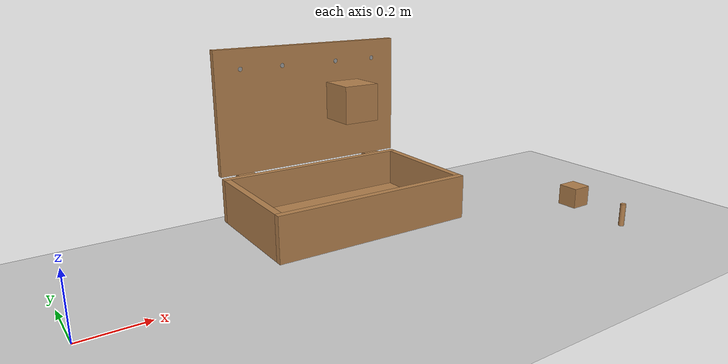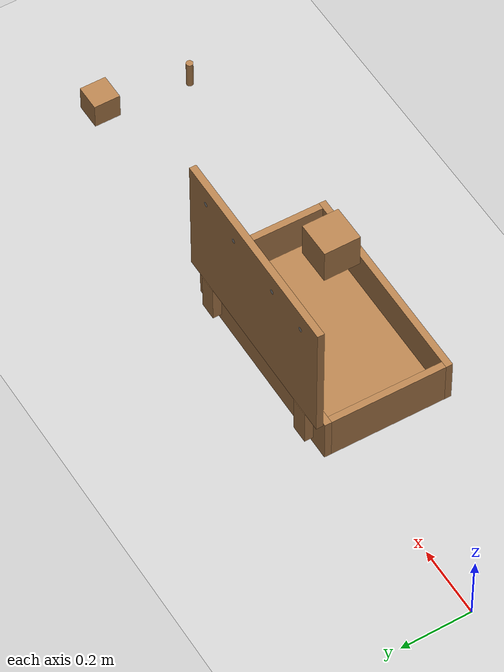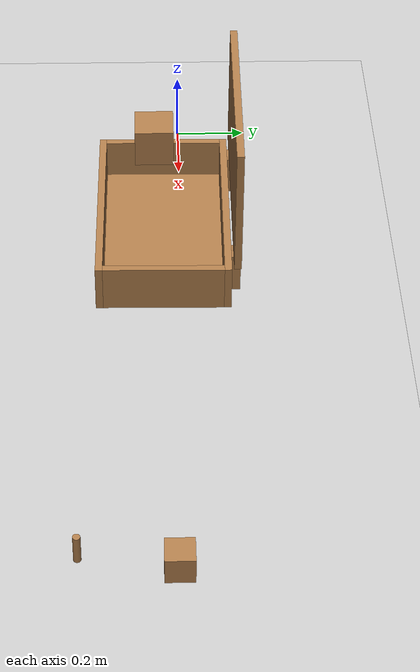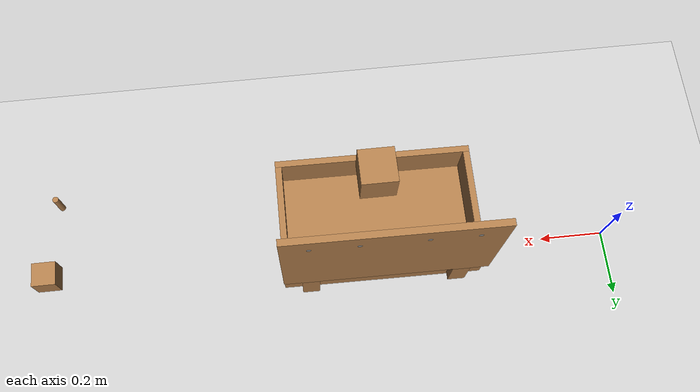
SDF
<sdf version="1.6">
 <world name="default">
  <light name="sun" type="directional">
   <pose>0 0 10 0 -0 0</pose>
   <diffuse>0.8 0.8 0.8 1</diffuse>
   <specular>0.2 0.2 0.2 1</specular>
   <attenuation>
    <range>1000</range>
    <constant>0.9</constant>
    <linear>0.01</linear>
    <quadratic>0.001</quadratic>
   </attenuation>
   <direction>-0.5 0.1 -0.9</direction>
  </light>
  <model name="ground_plane">
   <static>1</static>
   <link name="link">
    <collision name="collision">
     <geometry><plane><normal>0 0 1</normal><size>100 100</size></plane></geometry>
     <surface><friction><ode><mu>100</mu><mu2>50</mu2></ode></friction></surface>
    </collision>
    <visual name="visual">
     <cast_shadows>0</cast_shadows>
     <geometry><plane><normal>0 0 1</normal><size>100 100</size></plane></geometry>
     <material>
      <script><uri>file://media/materials/scripts/gazebo.material</uri><name>Gazebo/Grey</name></script>
     </material>
    </visual>
   </link>
  </model>
  <gravity>0 0 -9.8</gravity>
  <magnetic_field>6e-06 2.3e-05 -4.2e-05</magnetic_field>
  <atmosphere type="adiabatic"/>
  <physics name="default_physics" default="0" type="ode">
   <max_step_size>0.001</max_step_size>
   <real_time_factor>1</real_time_factor>
   <real_time_update_rate>1000</real_time_update_rate>
  </physics>
  <scene><ambient>0.4 0.4 0.4 1</ambient><background>0.7 0.7 0.7 1</background><shadows>1</shadows></scene>
  <spherical_coordinates>
   <surface_model>EARTH_WGS84</surface_model>
   <latitude_deg>0</latitude_deg>
   <longitude_deg>0</longitude_deg>
   <elevation>0</elevation>
   <heading_deg>0</heading_deg>
  </spherical_coordinates>
  <light name="user_point_light_0" type="point">
   <pose>1.00399 0.018046 1 0 -0 0</pose>
   <diffuse>0.5 0.5 0.5 1</diffuse>
   <specular>0.1 0.1 0.1 1</specular>
   <attenuation>
    <range>20</range>
    <constant>0.5</constant>
    <linear>0.01</linear>
    <quadratic>0.001</quadratic>
   </attenuation>
   <cast_shadows>0</cast_shadows>
   <direction>0 0 -1</direction>
  </light>
  <model name="wood_cube_10cm">
   <link name="link">
    <pose>0 0 0.05 0 -0 0</pose>
    <inertial>
     <mass>0.5167</mass>
     <inertia>
      <ixx>0.000861167</ixx>
      <ixy>0</ixy>
      <ixz>0</ixz>
      <iyy>0.000861167</iyy>
      <iyz>0</iyz>
      <izz>0.000861167</izz>
     </inertia>
    </inertial>
    <collision name="collision">
     <geometry><box><size>0.1 0.1 0.1</size></box></geometry>
     <surface>
      <contact>
       <poissons_ratio>0.347</poissons_ratio>
       <elastic_modulus>8.8e+09</elastic_modulus>
       <ode><kp>100000</kp><kd>100</kd><max_vel>100</max_vel><min_depth>0.001</min_depth></ode>
      </contact>
      <friction>
       <torsional>
        <coefficient>1</coefficient>
        <use_patch_radius>0</use_patch_radius>
        <surface_radius>0.01</surface_radius>
       </torsional>
      </friction>
     </surface>
    </collision>
    <visual name="visual">
     <geometry><box><size>0.1 0.1 0.1</size></box></geometry>
     <material>
      <script><uri>file://media/materials/scripts/gazebo.material</uri><name>Gazebo/Wood</name></script>
     </material>
    </visual>
   </link>
   <pose>0.763577 -0.075148 0.472536 0 -0 0</pose>
  </model>
  <model name="wood_cube_7_5cm">
   <link name="link">
    <pose>0 0 0.0375 0 -0 0</pose>
    <inertial>
     <mass>0.2249</mass>
     <inertia>
      <ixx>0.000210844</ixx>
      <ixy>0</ixy>
      <ixz>0</ixz>
      <iyy>0.000210844</iyy>
      <iyz>0</iyz>
      <izz>0.000210844</izz>
     </inertia>
    </inertial>
    <collision name="collision">
     <geometry><box><size>0.075 0.075 0.075</size></box></geometry>
     <surface>
      <contact>
       <poissons_ratio>0.347</poissons_ratio>
       <elastic_modulus>8.8e+09</elastic_modulus>
       <ode><kp>100000</kp><kd>100</kd><max_vel>100</max_vel><min_depth>0.001</min_depth></ode>
      </contact>
      <friction>
       <torsional>
        <coefficient>1</coefficient>
        <use_patch_radius>0</use_patch_radius>
        <surface_radius>0.01</surface_radius>
       </torsional>
      </friction>
     </surface>
    </collision>
    <visual name="visual">
     <geometry><box><size>0.075 0.075 0.075</size></box></geometry>
     <material>
      <script><uri>file://media/materials/scripts/gazebo.material</uri><name>Gazebo/Wood</name></script>
     </material>
    </visual>
   </link>
   <pose>1.79863 -0.02527 -0.001005 0 -0 0</pose>
  </model>
  <model name="wooden_peg">
   <link name="link">
    <pose>0 0 0.04 0 -0 0</pose>
    <inertial>
     <mass>0.0175</mass>
     <inertia>
      <ixx>9.74923e-06</ixx>
      <ixy>0</ixy>
      <ixz>0</ixz>
      <iyy>9.74923e-06</iyy>
      <iyz>0</iyz>
      <izz>8.31797e-07</izz>
     </inertia>
    </inertial>
    <collision name="collision">
     <geometry><cylinder><radius>0.00975</radius><length>0.08</length></cylinder></geometry>
     <surface>
      <contact>
       <poissons_ratio>0.347</poissons_ratio>
       <elastic_modulus>8.8e+09</elastic_modulus>
       <ode><kp>100000</kp><kd>100</kd><max_vel>100</max_vel><min_depth>0.001</min_depth></ode>
      </contact>
      <friction>
       <torsional>
        <coefficient>1</coefficient>
        <use_patch_radius>0</use_patch_radius>
        <surface_radius>0.01</surface_radius>
       </torsional>
      </friction>
     </surface>
    </collision>
    <visual name="visual">
     <geometry><cylinder><radius>0.00975</radius><length>0.08</length></cylinder></geometry>
     <material>
      <script><uri>file://media/materials/scripts/gazebo.material</uri><name>Gazebo/Wood</name></script>
     </material>
    </visual>
   </link>
   <pose>1.76029 -0.269925 -0.000853 7.2e-05 -8.1e-05 0</pose>
  </model>
  <model name="wooden_case">
   <link name="base">
    <pose>0 0 0.024 0 -0 0</pose>
    <inertial>
     <pose>-0.022184 0 0.171592 0 -0 0</pose>
     <mass>3.96264</mass>
     <inertia>
      <ixx>0.213536</ixx>
      <ixy>0</ixy>
      <ixz>0.000779377</ixz>
      <iyy>0.0708943</iyy>
      <iyz>0</iyz>
      <izz>0.154604</izz>
     </inertia>
    </inertial>
    <collision name="collision_back">
     <pose>-0.053975 0 0.1778 0 -0 0</pose>
     <geometry><box><size>0.01905 0.5461 0.3175</size></box></geometry>
     <surface>
      <contact>
       <poissons_ratio>0.347</poissons_ratio>
       <elastic_modulus>8.8e+09</elastic_modulus>
       <ode><kp>100000</kp><kd>100</kd><max_vel>100</max_vel><min_depth>0.001</min_depth></ode>
      </contact>
      <friction>
       <torsional>
        <coefficient>1</coefficient>
        <use_patch_radius>0</use_patch_radius>
        <surface_radius>0.01</surface_radius>
       </torsional>
      </friction>
     </surface>
    </collision>
    <visual name="visual_back">
     <pose>-0.053975 0 0.1778 0 -0 0</pose>
     <geometry><box><size>0.01905 0.5461 0.3175</size></box></geometry>
     <material>
      <script><uri>file://media/materials/scripts/gazebo.material</uri><name>Gazebo/Wood</name></script>
     </material>
    </visual>
    <collision name="collision_bottom">
     <pose>0 0 0.009525 0 -0 0</pose>
     <geometry><box><size>0.127 0.5842 0.01905</size></box></geometry>
     <surface>
      <contact>
       <poissons_ratio>0.347</poissons_ratio>
       <elastic_modulus>8.8e+09</elastic_modulus>
       <ode><kp>100000</kp><kd>100</kd><max_vel>100</max_vel><min_depth>0.001</min_depth></ode>
      </contact>
      <friction>
       <torsional>
        <coefficient>1</coefficient>
        <use_patch_radius>0</use_patch_radius>
        <surface_radius>0.01</surface_radius>
       </torsional>
      </friction>
     </surface>
    </collision>
    <visual name="visual_bottom">
     <pose>0 0 0.009525 0 -0 0</pose>
     <geometry><box><size>0.127 0.5842 0.01905</size></box></geometry>
     <material>
      <script><uri>file://media/materials/scripts/gazebo.material</uri><name>Gazebo/Wood</name></script>
     </material>
    </visual>
    <collision name="collision_top">
     <pose>0 0 0.346075 0 -0 0</pose>
     <geometry><box><size>0.127 0.5842 0.01905</size></box></geometry>
     <surface>
      <contact>
       <poissons_ratio>0.347</poissons_ratio>
       <elastic_modulus>8.8e+09</elastic_modulus>
       <ode><kp>100000</kp><kd>100</kd><max_vel>100</max_vel><min_depth>0.001</min_depth></ode>
      </contact>
      <friction>
       <torsional>
        <coefficient>1</coefficient>
        <use_patch_radius>0</use_patch_radius>
        <surface_radius>0.01</surface_radius>
       </torsional>
      </friction>
     </surface>
    </collision>
    <visual name="visual_top">
     <pose>0 0 0.346075 0 -0 0</pose>
     <geometry><box><size>0.127 0.5842 0.01905</size></box></geometry>
     <material>
      <script><uri>file://media/materials/scripts/gazebo.material</uri><name>Gazebo/Wood</name></script>
     </material>
    </visual>
    <collision name="collision_left">
     <pose>0 -0.282575 0.1778 0 -0 0</pose>
     <geometry><box><size>0.127 0.01905 0.3175</size></box></geometry>
     <surface>
      <contact>
       <poissons_ratio>0.347</poissons_ratio>
       <elastic_modulus>8.8e+09</elastic_modulus>
       <ode><kp>100000</kp><kd>100</kd><max_vel>100</max_vel><min_depth>0.001</min_depth></ode>
      </contact>
      <friction>
       <torsional>
        <coefficient>1</coefficient>
        <use_patch_radius>0</use_patch_radius>
        <surface_radius>0.01</surface_radius>
       </torsional>
      </friction>
     </surface>
    </collision>
    <visual name="visual_left">
     <pose>0 -0.282575 0.1778 0 -0 0</pose>
     <geometry><box><size>0.127 0.01905 0.3175</size></box></geometry>
     <material>
      <script><uri>file://media/materials/scripts/gazebo.material</uri><name>Gazebo/Wood</name></script>
     </material>
    </visual>
    <collision name="collision_right">
     <pose>0 0.282575 0.1778 0 -0 0</pose>
     <geometry><box><size>0.127 0.01905 0.3175</size></box></geometry>
     <surface>
      <contact>
       <poissons_ratio>0.347</poissons_ratio>
       <elastic_modulus>8.8e+09</elastic_modulus>
       <ode><kp>100000</kp><kd>100</kd><max_vel>100</max_vel><min_depth>0.001</min_depth></ode>
      </contact>
      <friction>
       <torsional>
        <coefficient>1</coefficient>
        <use_patch_radius>0</use_patch_radius>
        <surface_radius>0.01</surface_radius>
       </torsional>
      </friction>
     </surface>
    </collision>
    <visual name="visual_right">
     <pose>0 0.282575 0.1778 0 -0 0</pose>
     <geometry><box><size>0.127 0.01905 0.3175</size></box></geometry>
     <material>
      <script><uri>file://media/materials/scripts/gazebo.material</uri><name>Gazebo/Wood</name></script>
     </material>
    </visual>
    <collision name="collision_block_left">
     <pose>0.0095 -0.2151 -0.012 0 -0 0</pose>
     <geometry><box><size>0.108 0.05 0.024</size></box></geometry>
     <surface>
      <contact>
       <poissons_ratio>0.347</poissons_ratio>
       <elastic_modulus>8.8e+09</elastic_modulus>
       <ode><kp>100000</kp><kd>100</kd><max_vel>100</max_vel><min_depth>0.001</min_depth></ode>
      </contact>
      <friction>
       <torsional>
        <coefficient>1</coefficient>
        <use_patch_radius>0</use_patch_radius>
        <surface_radius>0.01</surface_radius>
       </torsional>
      </friction>
     </surface>
    </collision>
    <visual name="visual_block_left">
     <pose>0.0095 -0.2151 -0.012 0 -0 0</pose>
     <geometry><box><size>0.108 0.05 0.024</size></box></geometry>
     <material>
      <script><uri>file://media/materials/scripts/gazebo.material</uri><name>Gazebo/Wood</name></script>
     </material>
    </visual>
    <collision name="collision_block_right">
     <pose>0.0095 0.2151 -0.012 0 -0 0</pose>
     <geometry><box><size>0.108 0.05 0.024</size></box></geometry>
     <surface>
      <contact>
       <poissons_ratio>0.347</poissons_ratio>
       <elastic_modulus>8.8e+09</elastic_modulus>
       <ode><kp>100000</kp><kd>100</kd><max_vel>100</max_vel><min_depth>0.001</min_depth></ode>
      </contact>
      <friction>
       <torsional>
        <coefficient>1</coefficient>
        <use_patch_radius>0</use_patch_radius>
        <surface_radius>0.01</surface_radius>
       </torsional>
      </friction>
     </surface>
    </collision>
    <visual name="visual_block_right">
     <pose>0.0095 0.2151 -0.012 0 -0 0</pose>
     <geometry><box><size>0.108 0.05 0.024</size></box></geometry>
     <material>
      <script><uri>file://media/materials/scripts/gazebo.material</uri><name>Gazebo/Wood</name></script>
     </material>
    </visual>
   </link>
   <link name="lid">
    <pose>0.243775 0 0.009525 0 -0 0</pose>
    <inertial>
     <mass>1.97874</mass>
     <inertia>
      <ixx>0.0563367</ixx>
      <ixy>0</ixy>
      <ixz>0</ixz>
      <iyy>0.020911</iyy>
      <iyz>0</iyz>
      <izz>0.0771281</izz>
     </inertia>
    </inertial>
    <collision name="collision">
     <geometry><box><size>0.3556 0.5842 0.01905</size></box></geometry>
     <surface>
      <contact>
       <poissons_ratio>0.347</poissons_ratio>
       <elastic_modulus>8.8e+09</elastic_modulus>
       <ode><kp>100000</kp><kd>100</kd><max_vel>100</max_vel><min_depth>0.001</min_depth></ode>
      </contact>
      <friction>
       <torsional>
        <coefficient>1</coefficient>
        <use_patch_radius>0</use_patch_radius>
        <surface_radius>0.01</surface_radius>
       </torsional>
      </friction>
     </surface>
    </collision>
    <visual name="visual">
     <geometry><box><size>0.3556 0.5842 0.01905</size></box></geometry>
     <material>
      <script><uri>file://media/materials/scripts/gazebo.material</uri><name>Gazebo/Wood</name></script>
     </material>
    </visual>
    <visual name="tee_nut_1">
     <pose>0.122 -0.216 0 0 -0 0</pose>
     <geometry><cylinder><radius>0.00635</radius><length>0.0192405</length></cylinder></geometry>
     <material>
      <script><uri>file://media/materials/scripts/gazebo.material</uri><name>Gazebo/Grey</name></script>
     </material>
    </visual>
    <visual name="tee_nut_2">
     <pose>0.122 -0.088 0 0 -0 0</pose>
     <geometry><cylinder><radius>0.00635</radius><length>0.0192405</length></cylinder></geometry>
     <material>
      <script><uri>file://media/materials/scripts/gazebo.material</uri><name>Gazebo/Grey</name></script>
     </material>
    </visual>
    <visual name="tee_nut_3">
     <pose>0.122 0.088 0 0 -0 0</pose>
     <geometry><cylinder><radius>0.00635</radius><length>0.0192405</length></cylinder></geometry>
     <material>
      <script><uri>file://media/materials/scripts/gazebo.material</uri><name>Gazebo/Grey</name></script>
     </material>
    </visual>
    <visual name="tee_nut_4">
     <pose>0.122 0.216 0 0 -0 0</pose>
     <geometry><cylinder><radius>0.00635</radius><length>0.0192405</length></cylinder></geometry>
     <material>
      <script><uri>file://media/materials/scripts/gazebo.material</uri><name>Gazebo/Grey</name></script>
     </material>
    </visual>
   </link>
   <joint name="lid_hinge" type="revolute">
    <pose>-0.1778 0 0.01905 0 -0 0</pose>
    <parent>base</parent>
    <child>lid</child>
    <axis>
     <xyz>0 1 0</xyz>
     <limit><upper>0.523599</upper><lower>-1.5708</lower></limit>
     <use_parent_model_frame>0</use_parent_model_frame>
     <dynamics><spring_reference>0</spring_reference><spring_stiffness>0</spring_stiffness></dynamics>
    </axis>
   </joint>
   <pose>0.749947 0.150031 0.23745 0 -1.57069 1.56125</pose>
  </model>
 </world>
</sdf>
